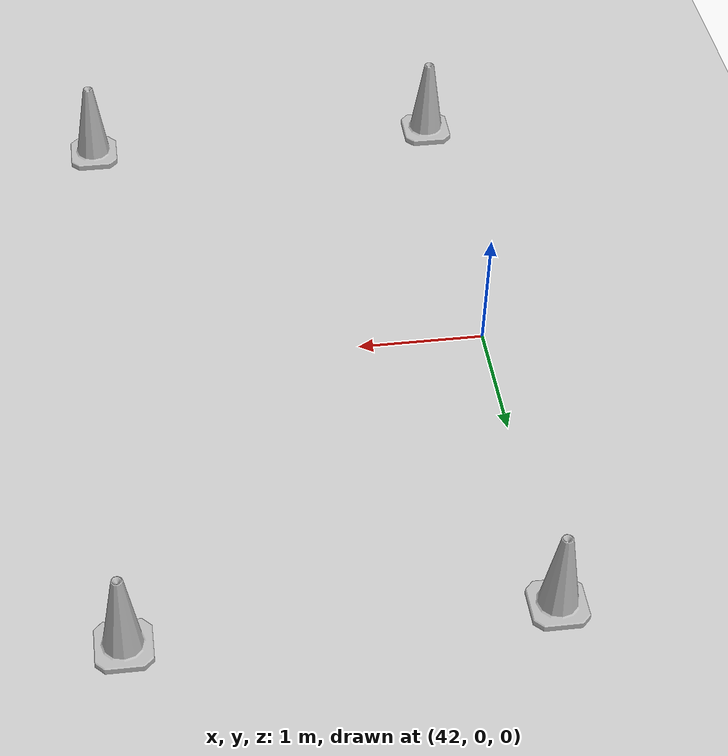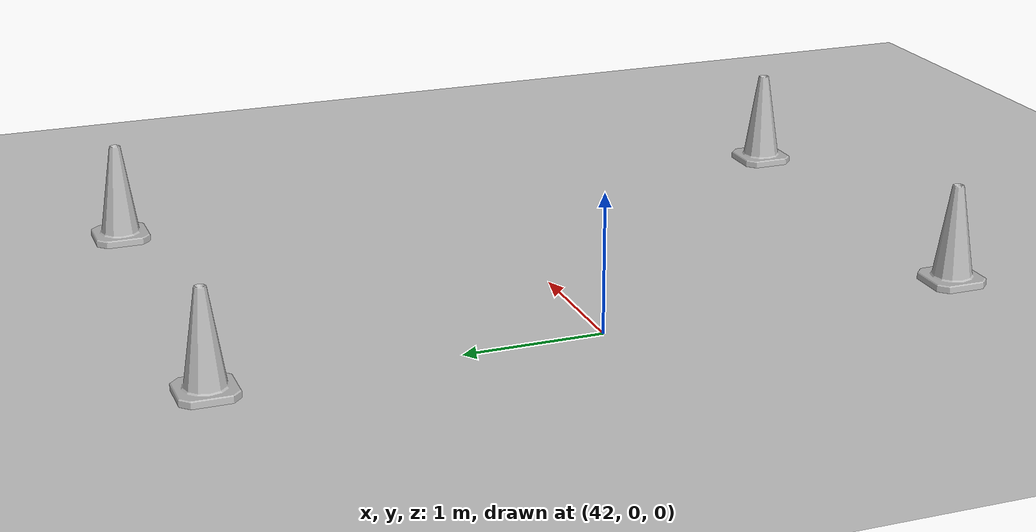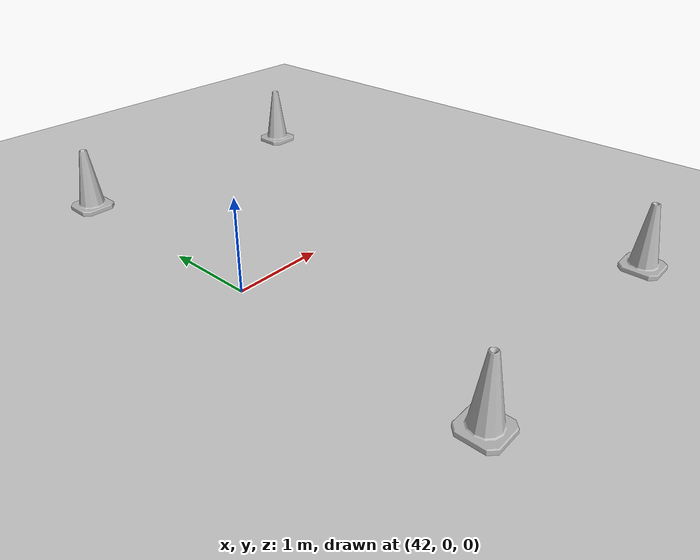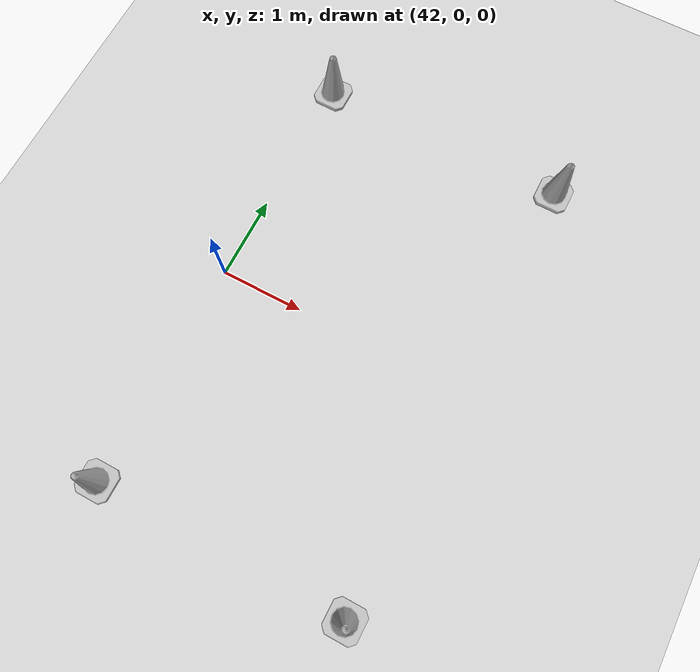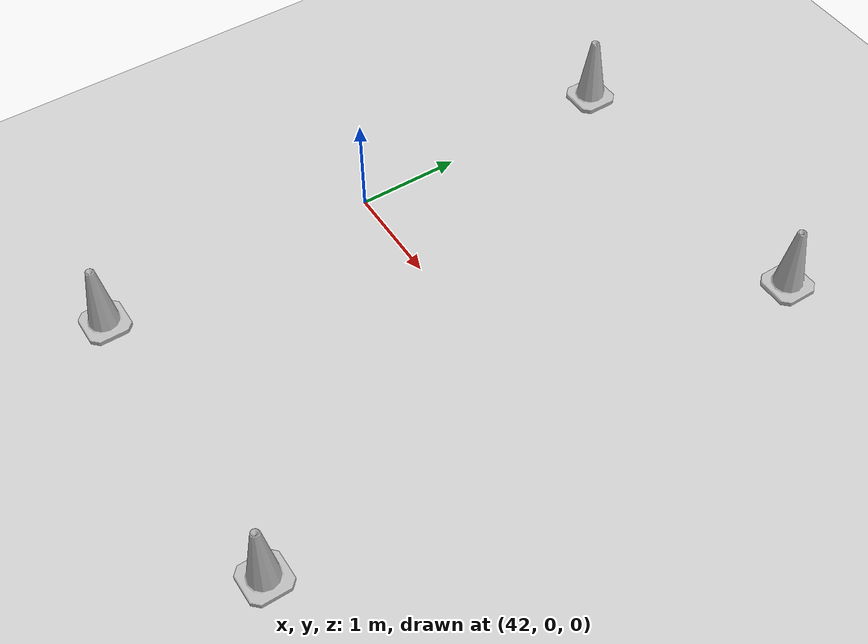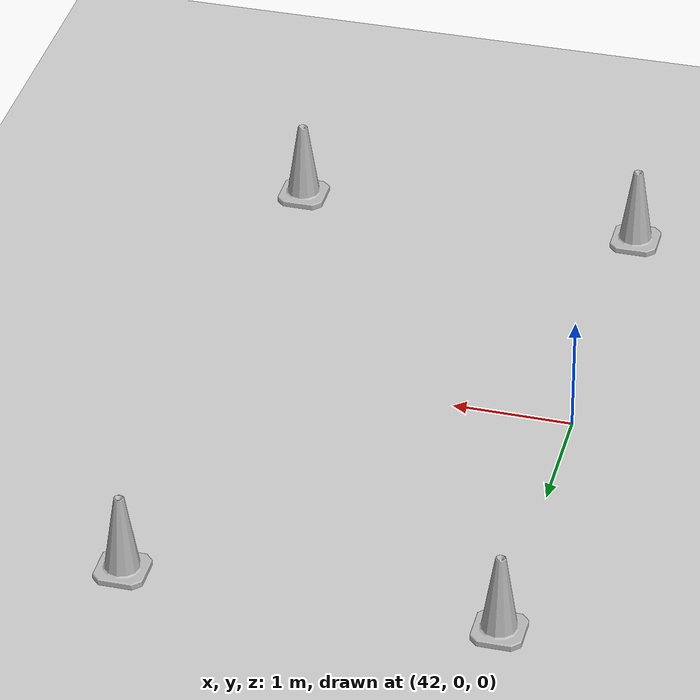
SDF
<sdf version="1.7">
 <world name="default">
  <model name="ground_plane">
   <static>1</static>
   <link name="link">
    <collision name="collision">
     <geometry><plane><normal>0 0 1</normal><size>100 100</size></plane></geometry>
     <surface>
      <contact><collide_bitmask>65535</collide_bitmask></contact>
      <friction><ode><mu>100</mu><mu2>50</mu2></ode></friction>
     </surface>
    </collision>
    <visual name="visual">
     <cast_shadows>0</cast_shadows>
     <geometry><plane><normal>0 0 1</normal><size>100 100</size></plane></geometry>
     <material>
      <script><uri>file://media/materials/scripts/gazebo.material</uri><name>Gazebo/Grey</name></script>
     </material>
    </visual>
   </link>
  </model>
  <model name="Construction_Cone_b_17">
   <link name="link">
    <inertial>
     <inertia><ixx>1</ixx><ixy>0</ixy><ixz>0</ixz><iyy>1</iyy><iyz>0</iyz><izz>1</izz></inertia>
     <mass>1</mass>
    </inertial>
    <visual name="visual">
     <geometry>
      <mesh><scale>8 8 6.7</scale><uri>./construction_cone/meshes/construction_cone_b.dae</uri></mesh>
     </geometry>
     <material><shader type="pixel"/></material>
    </visual>
    <collision name="collision">
     <geometry>
      <mesh><uri>./construction_cone/meshes/construction_cone_b.dae</uri><scale>8 8 6.7</scale></mesh>
     </geometry>
     <surface>
      <friction>
       <ode><mu>1</mu><mu2>1</mu2><fdir1>0 0 0</fdir1><slip1>0</slip1><slip2>0</slip2></ode>
       <torsional>
        <coefficient>1</coefficient>
        <patch_radius>0</patch_radius>
        <surface_radius>0</surface_radius>
        <use_patch_radius>1</use_patch_radius>
        <ode><slip>0</slip></ode>
       </torsional>
      </friction>
      <bounce><restitution_coefficient>0</restitution_coefficient><threshold>1e+06</threshold></bounce>
      <contact>
       <collide_without_contact>0</collide_without_contact>
       <collide_without_contact_bitmask>1</collide_without_contact_bitmask>
       <collide_bitmask>1</collide_bitmask>
       <ode>
        <soft_cfm>0</soft_cfm>
        <soft_erp>0.2</soft_erp>
        <kp>1e+13</kp>
        <kd>1</kd>
        <max_vel>0.01</max_vel>
        <min_depth>0</min_depth>
       </ode>
       <bullet>
        <split_impulse>1</split_impulse>
        <split_impulse_penetration_threshold>-0.01</split_impulse_penetration_threshold>
        <soft_cfm>0</soft_cfm>
        <soft_erp>0.2</soft_erp>
        <kp>1e+13</kp>
        <kd>1</kd>
       </bullet>
      </contact>
     </surface>
    </collision>
   </link>
   <static>0</static>
   <pose>44.9997 -2.70154 0 -0 -0 -0</pose>
  </model>
  <model name="Construction_Cone_b_19">
   <link name="link">
    <inertial>
     <inertia><ixx>1</ixx><ixy>0</ixy><ixz>0</ixz><iyy>1</iyy><iyz>0</iyz><izz>1</izz></inertia>
     <mass>1</mass>
    </inertial>
    <visual name="visual">
     <geometry>
      <mesh><scale>8 8 6.7</scale><uri>./construction_cone/meshes/construction_cone_b.dae</uri></mesh>
     </geometry>
     <material><shader type="pixel"/></material>
    </visual>
    <collision name="collision">
     <geometry>
      <mesh><uri>./construction_cone/meshes/construction_cone_b.dae</uri><scale>8 8 6.7</scale></mesh>
     </geometry>
     <surface>
      <friction>
       <ode><mu>1</mu><mu2>1</mu2><fdir1>0 0 0</fdir1><slip1>0</slip1><slip2>0</slip2></ode>
       <torsional>
        <coefficient>1</coefficient>
        <patch_radius>0</patch_radius>
        <surface_radius>0</surface_radius>
        <use_patch_radius>1</use_patch_radius>
        <ode><slip>0</slip></ode>
       </torsional>
      </friction>
      <bounce><restitution_coefficient>0</restitution_coefficient><threshold>1e+06</threshold></bounce>
      <contact>
       <collide_without_contact>0</collide_without_contact>
       <collide_without_contact_bitmask>1</collide_without_contact_bitmask>
       <collide_bitmask>1</collide_bitmask>
       <ode>
        <soft_cfm>0</soft_cfm>
        <soft_erp>0.2</soft_erp>
        <kp>1e+13</kp>
        <kd>1</kd>
        <max_vel>0.01</max_vel>
        <min_depth>0</min_depth>
       </ode>
       <bullet>
        <split_impulse>1</split_impulse>
        <split_impulse_penetration_threshold>-0.01</split_impulse_penetration_threshold>
        <soft_cfm>0</soft_cfm>
        <soft_erp>0.2</soft_erp>
        <kp>1e+13</kp>
        <kd>1</kd>
       </bullet>
      </contact>
     </surface>
    </collision>
   </link>
   <static>0</static>
   <pose>42.0006 -2.70177 -0 0 -0 0</pose>
  </model>
  <model name="Construction_Cone_y_13">
   <link name="link">
    <inertial>
     <inertia><ixx>1</ixx><ixy>0</ixy><ixz>0</ixz><iyy>1</iyy><iyz>0</iyz><izz>1</izz></inertia>
     <mass>1</mass>
    </inertial>
    <visual name="visual">
     <geometry>
      <mesh><scale>8 8 6.7</scale><uri>./construction_cone/meshes/construction_cone_y.dae</uri></mesh>
     </geometry>
     <material><shader type="pixel"/></material>
    </visual>
    <collision name="collision">
     <geometry>
      <mesh><uri>./construction_cone/meshes/construction_cone_y.dae</uri><scale>8 8 6.7</scale></mesh>
     </geometry>
     <surface>
      <friction>
       <ode><mu>1</mu><mu2>1</mu2><fdir1>0 0 0</fdir1><slip1>0</slip1><slip2>0</slip2></ode>
       <torsional>
        <coefficient>1</coefficient>
        <patch_radius>0</patch_radius>
        <surface_radius>0</surface_radius>
        <use_patch_radius>1</use_patch_radius>
        <ode><slip>0</slip></ode>
       </torsional>
      </friction>
      <bounce><restitution_coefficient>0</restitution_coefficient><threshold>1e+06</threshold></bounce>
      <contact>
       <collide_without_contact>0</collide_without_contact>
       <collide_without_contact_bitmask>1</collide_without_contact_bitmask>
       <collide_bitmask>1</collide_bitmask>
       <ode>
        <soft_cfm>0</soft_cfm>
        <soft_erp>0.2</soft_erp>
        <kp>1e+13</kp>
        <kd>1</kd>
        <max_vel>0.01</max_vel>
        <min_depth>0</min_depth>
       </ode>
       <bullet>
        <split_impulse>1</split_impulse>
        <split_impulse_penetration_threshold>-0.01</split_impulse_penetration_threshold>
        <soft_cfm>0</soft_cfm>
        <soft_erp>0.2</soft_erp>
        <kp>1e+13</kp>
        <kd>1</kd>
       </bullet>
      </contact>
     </surface>
    </collision>
   </link>
   <static>0</static>
   <pose>42.0007 2.70234 -0 0 -0 0</pose>
  </model>
  <model name="Construction_Cone_y_14">
   <link name="link">
    <inertial>
     <inertia><ixx>1</ixx><ixy>0</ixy><ixz>0</ixz><iyy>1</iyy><iyz>0</iyz><izz>1</izz></inertia>
     <mass>1</mass>
    </inertial>
    <visual name="visual">
     <geometry>
      <mesh><scale>8 8 6.7</scale><uri>./construction_cone/meshes/construction_cone_y.dae</uri></mesh>
     </geometry>
     <material><shader type="pixel"/></material>
    </visual>
    <collision name="collision">
     <geometry>
      <mesh><uri>./construction_cone/meshes/construction_cone_y.dae</uri><scale>8 8 6.7</scale></mesh>
     </geometry>
     <surface>
      <friction>
       <ode><mu>1</mu><mu2>1</mu2><fdir1>0 0 0</fdir1><slip1>0</slip1><slip2>0</slip2></ode>
       <torsional>
        <coefficient>1</coefficient>
        <patch_radius>0</patch_radius>
        <surface_radius>0</surface_radius>
        <use_patch_radius>1</use_patch_radius>
        <ode><slip>0</slip></ode>
       </torsional>
      </friction>
      <bounce><restitution_coefficient>0</restitution_coefficient><threshold>1e+06</threshold></bounce>
      <contact>
       <collide_without_contact>0</collide_without_contact>
       <collide_without_contact_bitmask>1</collide_without_contact_bitmask>
       <collide_bitmask>1</collide_bitmask>
       <ode>
        <soft_cfm>0</soft_cfm>
        <soft_erp>0.2</soft_erp>
        <kp>1e+13</kp>
        <kd>1</kd>
        <max_vel>0.01</max_vel>
        <min_depth>0</min_depth>
       </ode>
       <bullet>
        <split_impulse>1</split_impulse>
        <split_impulse_penetration_threshold>-0.01</split_impulse_penetration_threshold>
        <soft_cfm>0</soft_cfm>
        <soft_erp>0.2</soft_erp>
        <kp>1e+13</kp>
        <kd>1</kd>
       </bullet>
      </contact>
     </surface>
    </collision>
   </link>
   <static>0</static>
   <pose>45.0004 2.70165 -0 -0 -0 -0</pose>
  </model>
 </world>
</sdf>
